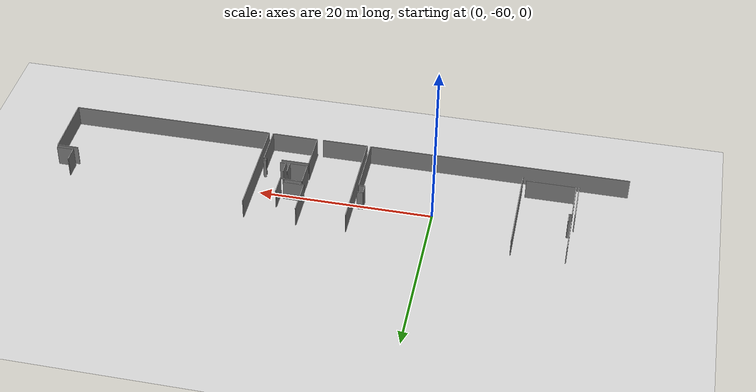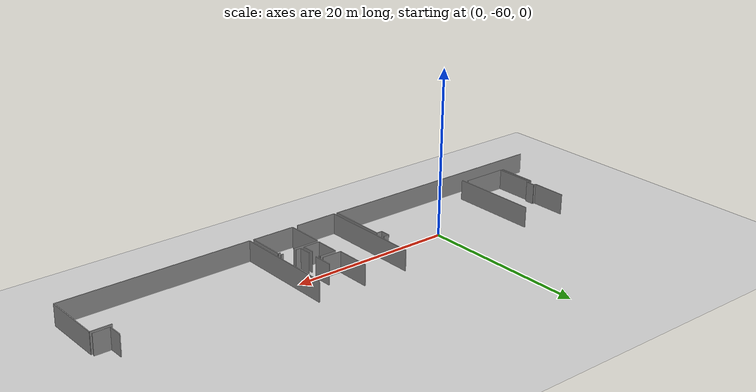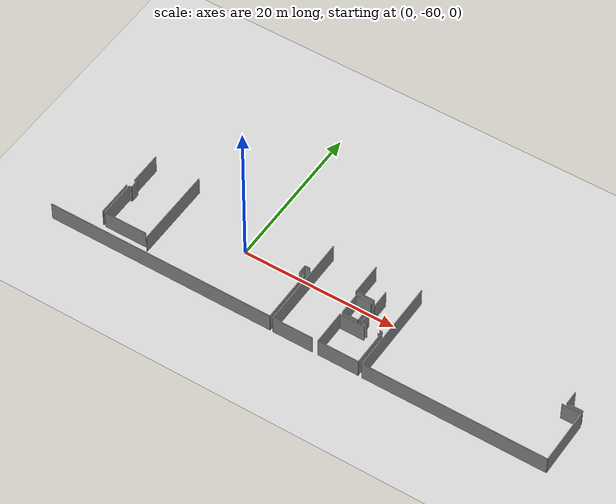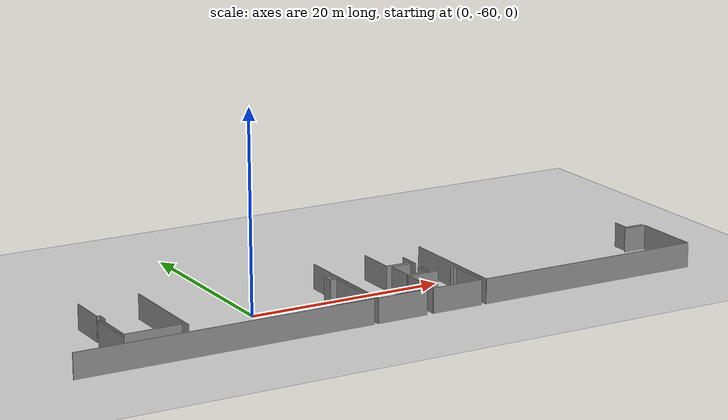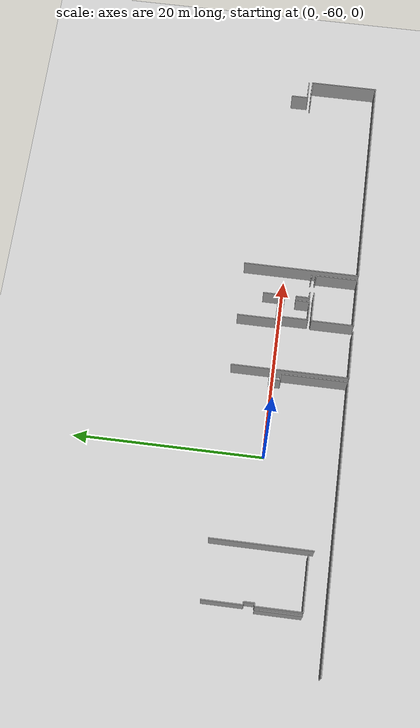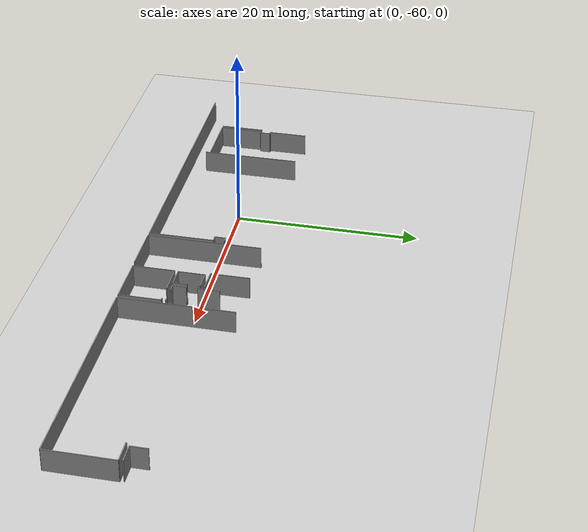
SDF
<sdf version="1.6">
 <world name="default">
  <model name="ground_plane">
   <static>1</static>
   <link name="link">
    <collision name="collision">
     <geometry><plane><normal>0 0 1</normal><size>100 100</size></plane></geometry>
     <surface><friction><ode><mu>100</mu><mu2>50</mu2></ode></friction></surface>
    </collision>
    <visual name="visual">
     <cast_shadows>0</cast_shadows>
     <geometry><plane><normal>0 0 1</normal><size>100 100</size></plane></geometry>
     <material>
      <script><uri>file://media/materials/scripts/gazebo.material</uri><name>Gazebo/Grey</name></script>
     </material>
    </visual>
   </link>
  </model>
  <model name="50036893">
   <static>1</static>
   <link name="Wall_76">
    <collision name="Wall_76_Collision">
     <geometry><box><size>4.75788913053 0.1 2.5</size></box></geometry>
     <pose>2.37894456527 0 1.25 0 0 0</pose>
    </collision>
    <visual name="Wall_76_Visual">
     <pose>2.37894456527 0 1.25 0 0 0</pose>
     <geometry><box><size>4.75788913053 0.1 2.5</size></box></geometry>
     <material>
      <script><uri>file://media/materials/scripts/gazebo.material</uri><name>Gazebo/Grey</name></script>
      <ambient>1 1 1 1</ambient>
     </material>
    </visual>
    <pose>58.3964949879 -128.67300291 0 0 0 -1.57079632679</pose>
   </link>
   <link name="Wall_78">
    <collision name="Wall_78_Collision">
     <geometry><box><size>4.75712827406 0.1 2.5</size></box></geometry>
     <pose>2.37856413703 0 1.25 0 0 0</pose>
    </collision>
    <visual name="Wall_78_Visual">
     <pose>2.37856413703 0 1.25 0 0 0</pose>
     <geometry><box><size>4.75712827406 0.1 2.5</size></box></geometry>
     <material>
      <script><uri>file://media/materials/scripts/gazebo.material</uri><name>Gazebo/Grey</name></script>
      <ambient>1 1 1 1</ambient>
     </material>
    </visual>
    <pose>58.7261994585 -133.440275937 0 0 0 1.57079632679</pose>
   </link>
   <link name="Wall_79">
    <collision name="Wall_79_Collision">
     <geometry><box><size>0.324632094194 0.1 2.5</size></box></geometry>
     <pose>0.162316047097 0 1.25 0 0 0</pose>
    </collision>
    <visual name="Wall_79_Visual">
     <pose>0.162316047097 0 1.25 0 0 0</pose>
     <geometry><box><size>0.324632094194 0.1 2.5</size></box></geometry>
     <material>
      <script><uri>file://media/materials/scripts/gazebo.material</uri><name>Gazebo/Grey</name></script>
      <ambient>1 1 1 1</ambient>
     </material>
    </visual>
    <pose>58.7261994585 -128.683147663 0 0 0 0.0</pose>
   </link>
   <link name="Wall_80">
    <collision name="Wall_80_Collision">
     <geometry><box><size>1.11845901203 0.1 2.5</size></box></geometry>
     <pose>0.559229506014 0 1.25 0 0 0</pose>
    </collision>
    <visual name="Wall_80_Visual">
     <pose>0.559229506014 0 1.25 0 0 0</pose>
     <geometry><box><size>1.11845901203 0.1 2.5</size></box></geometry>
     <material>
      <script><uri>file://media/materials/scripts/gazebo.material</uri><name>Gazebo/Grey</name></script>
      <ambient>1 1 1 1</ambient>
     </material>
    </visual>
    <pose>59.0508315527 -128.683147663 0 0 0 1.57079632679</pose>
   </link>
   <link name="Wall_81">
    <collision name="Wall_81_Collision">
     <geometry><box><size>0.317023529486 0.1 2.5</size></box></geometry>
     <pose>0.158511764743 0 1.25 0 0 0</pose>
    </collision>
    <visual name="Wall_81_Visual">
     <pose>0.158511764743 0 1.25 0 0 0</pose>
     <geometry><box><size>0.317023529486 0.1 2.5</size></box></geometry>
     <material>
      <script><uri>file://media/materials/scripts/gazebo.material</uri><name>Gazebo/Grey</name></script>
      <ambient>1 1 1 1</ambient>
     </material>
    </visual>
    <pose>59.0508315527 -127.564688651 0 0 0 3.14159265359</pose>
   </link>
   <link name="Wall_82">
    <collision name="Wall_82_Collision">
     <geometry><box><size>4.20221028805 0.1 2.5</size></box></geometry>
     <pose>2.10110514402 0 1.25 0 0 0</pose>
    </collision>
    <visual name="Wall_82_Visual">
     <pose>2.10110514402 0 1.25 0 0 0</pose>
     <geometry><box><size>4.20221028805 0.1 2.5</size></box></geometry>
     <material>
      <script><uri>file://media/materials/scripts/gazebo.material</uri><name>Gazebo/Grey</name></script>
      <ambient>1 1 1 1</ambient>
     </material>
    </visual>
    <pose>58.7338080232 -127.564688651 0 0 0 1.57079632679</pose>
   </link>
   <link name="Wall_86">
    <collision name="Wall_86_Collision">
     <geometry><box><size>5.65316453925 0.1 2.5</size></box></geometry>
     <pose>2.82658226963 0 1.25 0 0 0</pose>
    </collision>
    <visual name="Wall_86_Visual">
     <pose>2.82658226963 0 1.25 0 0 0</pose>
     <geometry><box><size>5.65316453925 0.1 2.5</size></box></geometry>
     <material>
      <script><uri>file://media/materials/scripts/gazebo.material</uri><name>Gazebo/Grey</name></script>
      <ambient>1 1 1 1</ambient>
     </material>
    </visual>
    <pose>64.3793630363 -133.436978893 0 0 0 -3.14100943248</pose>
   </link>
   <link name="Wall_89">
    <collision name="Wall_89_Collision">
     <geometry><box><size>10.5918829296 0.1 2.5</size></box></geometry>
     <pose>5.29594146478 0 1.25 0 0 0</pose>
    </collision>
    <visual name="Wall_89_Visual">
     <pose>5.29594146478 0 1.25 0 0 0</pose>
     <geometry><box><size>10.5918829296 0.1 2.5</size></box></geometry>
     <material>
      <script><uri>file://media/materials/scripts/gazebo.material</uri><name>Gazebo/Grey</name></script>
      <ambient>1 1 1 1</ambient>
     </material>
    </visual>
    <pose>64.8181236011 -133.951571486 0 0 0 1.57079632679</pose>
   </link>
   <link name="Wall_93">
    <collision name="Wall_93_Collision">
     <geometry><box><size>0.672089882511 0.1 2.5</size></box></geometry>
     <pose>0.336044941256 0 1.25 0 0 0</pose>
    </collision>
    <visual name="Wall_93_Visual">
     <pose>0.336044941256 0 1.25 0 0 0</pose>
     <geometry><box><size>0.672089882511 0.1 2.5</size></box></geometry>
     <material>
      <script><uri>file://media/materials/scripts/gazebo.material</uri><name>Gazebo/Grey</name></script>
      <ambient>1 1 1 1</ambient>
     </material>
    </visual>
    <pose>82.825060076 -127.553783042 0 0 0 3.14159265359</pose>
   </link>
   <link name="Wall_94">
    <collision name="Wall_94_Collision">
     <geometry><box><size>1.14027023086 0.1 2.5</size></box></geometry>
     <pose>0.570135115428 0 1.25 0 0 0</pose>
    </collision>
    <visual name="Wall_94_Visual">
     <pose>0.570135115428 0 1.25 0 0 0</pose>
     <geometry><box><size>1.14027023086 0.1 2.5</size></box></geometry>
     <material>
      <script><uri>file://media/materials/scripts/gazebo.material</uri><name>Gazebo/Grey</name></script>
      <ambient>1 1 1 1</ambient>
     </material>
    </visual>
    <pose>82.1529701934 -127.553783042 0 0 0 -1.57079632679</pose>
   </link>
   <link name="Wall_95">
    <collision name="Wall_95_Collision">
     <geometry><box><size>0.702524141342 0.1 2.5</size></box></geometry>
     <pose>0.351262070671 0 1.25 0 0 0</pose>
    </collision>
    <visual name="Wall_95_Visual">
     <pose>0.351262070671 0 1.25 0 0 0</pose>
     <geometry><box><size>0.702524141342 0.1 2.5</size></box></geometry>
     <material>
      <script><uri>file://media/materials/scripts/gazebo.material</uri><name>Gazebo/Grey</name></script>
      <ambient>1 1 1 1</ambient>
     </material>
    </visual>
    <pose>82.1529701934 -128.694053273 0 0 0 0.0</pose>
   </link>
   <link name="Wall_96">
    <collision name="Wall_96_Collision">
     <geometry><box><size>7.04806710754 0.1 2.5</size></box></geometry>
     <pose>3.52403355377 0 1.25 0 0 0</pose>
    </collision>
    <visual name="Wall_96_Visual">
     <pose>3.52403355377 0 1.25 0 0 0</pose>
     <geometry><box><size>7.04806710754 0.1 2.5</size></box></geometry>
     <material>
      <script><uri>file://media/materials/scripts/gazebo.material</uri><name>Gazebo/Grey</name></script>
      <ambient>1 1 1 1</ambient>
     </material>
    </visual>
    <pose>82.8554943348 -128.694053273 0 0 0 -1.57079632679</pose>
   </link>
   <link name="Wall_97">
    <collision name="Wall_97_Collision">
     <geometry><box><size>30.0157904505 0.1 2.5</size></box></geometry>
     <pose>15.0078952252 0 1.25 0 0 0</pose>
    </collision>
    <visual name="Wall_97_Visual">
     <pose>15.0078952252 0 1.25 0 0 0</pose>
     <geometry><box><size>30.0157904505 0.1 2.5</size></box></geometry>
     <material>
      <script><uri>file://media/materials/scripts/gazebo.material</uri><name>Gazebo/Grey</name></script>
      <ambient>1 1 1 1</ambient>
     </material>
    </visual>
    <pose>82.8554943348 -135.74212038 0 0 0 3.14117017791</pose>
   </link>
   <link name="Wall_98">
    <collision name="Wall_98_Collision">
     <geometry><box><size>12.3824318241 0.1 2.5</size></box></geometry>
     <pose>6.19121591204 0 1.25 0 0 0</pose>
    </collision>
    <visual name="Wall_98_Visual">
     <pose>6.19121591204 0 1.25 0 0 0</pose>
     <geometry><box><size>12.3824318241 0.1 2.5</size></box></geometry>
     <material>
      <script><uri>file://media/materials/scripts/gazebo.material</uri><name>Gazebo/Grey</name></script>
      <ambient>1 1 1 1</ambient>
     </material>
    </visual>
    <pose>83.2917187114 -135.767482263 0 0 0 1.57079632679</pose>
   </link>
   <link name="Wall_102">
    <collision name="Wall_102_Collision">
     <geometry><box><size>5.24737670231 0.1 2.5</size></box></geometry>
     <pose>2.62368835115 0 1.25 0 0 0</pose>
    </collision>
    <visual name="Wall_102_Visual">
     <pose>2.62368835115 0 1.25 0 0 0</pose>
     <geometry><box><size>5.24737670231 0.1 2.5</size></box></geometry>
     <material>
      <script><uri>file://media/materials/scripts/gazebo.material</uri><name>Gazebo/Grey</name></script>
      <ambient>1 1 1 1</ambient>
     </material>
    </visual>
    <pose>88.5390921714 -135.76164903 0 0 0 -3.14048100591</pose>
   </link>
   <link name="Wall_106">
    <collision name="Wall_106_Collision">
     <geometry><box><size>0.329704470666 0.1 2.5</size></box></geometry>
     <pose>0.164852235333 0 1.25 0 0 0</pose>
    </collision>
    <visual name="Wall_106_Visual">
     <pose>0.164852235333 0 1.25 0 0 0</pose>
     <geometry><box><size>0.329704470666 0.1 2.5</size></box></geometry>
     <material>
      <script><uri>file://media/materials/scripts/gazebo.material</uri><name>Gazebo/Grey</name></script>
      <ambient>1 1 1 1</ambient>
     </material>
    </visual>
    <pose>94.5118154669 -130.799343127 0 0 0 3.14159265359</pose>
   </link>
   <link name="Wall_107">
    <collision name="Wall_107_Collision">
     <geometry><box><size>0.674626070747 0.1 2.5</size></box></geometry>
     <pose>0.337313035374 0 1.25 0 0 0</pose>
    </collision>
    <visual name="Wall_107_Visual">
     <pose>0.337313035374 0 1.25 0 0 0</pose>
     <geometry><box><size>0.674626070747 0.1 2.5</size></box></geometry>
     <material>
      <script><uri>file://media/materials/scripts/gazebo.material</uri><name>Gazebo/Grey</name></script>
      <ambient>1 1 1 1</ambient>
     </material>
    </visual>
    <pose>92.5107629488 -130.799343127 0 0 0 3.14159265359</pose>
   </link>
   <link name="Wall_108">
    <collision name="Wall_108_Collision">
     <geometry><box><size>1.44917795799 0.1 2.5</size></box></geometry>
     <pose>0.724588978994 0 1.25 0 0 0</pose>
    </collision>
    <visual name="Wall_108_Visual">
     <pose>0.724588978994 0 1.25 0 0 0</pose>
     <geometry><box><size>1.44917795799 0.1 2.5</size></box></geometry>
     <material>
      <script><uri>file://media/materials/scripts/gazebo.material</uri><name>Gazebo/Grey</name></script>
      <ambient>1 1 1 1</ambient>
     </material>
    </visual>
    <pose>91.8361368781 -130.799343127 0 0 0 1.57079632679</pose>
   </link>
   <link name="Wall_109">
    <collision name="Wall_109_Collision">
     <geometry><box><size>2.34724221232 0.1 2.5</size></box></geometry>
     <pose>1.17362110616 0 1.25 0 0 0</pose>
    </collision>
    <visual name="Wall_109_Visual">
     <pose>1.17362110616 0 1.25 0 0 0</pose>
     <geometry><box><size>2.34724221232 0.1 2.5</size></box></geometry>
     <material>
      <script><uri>file://media/materials/scripts/gazebo.material</uri><name>Gazebo/Grey</name></script>
      <ambient>1 1 1 1</ambient>
     </material>
    </visual>
    <pose>91.8361368781 -128.177431729 0 0 0 1.57079632679</pose>
   </link>
   <link name="Wall_112">
    <collision name="Wall_112_Collision">
     <geometry><box><size>4.13601577509 0.1 2.5</size></box></geometry>
     <pose>2.06800788755 0 1.25 0 0 0</pose>
    </collision>
    <visual name="Wall_112_Visual">
     <pose>2.06800788755 0 1.25 0 0 0</pose>
     <geometry><box><size>4.13601577509 0.1 2.5</size></box></geometry>
     <material>
      <script><uri>file://media/materials/scripts/gazebo.material</uri><name>Gazebo/Grey</name></script>
      <ambient>1 1 1 1</ambient>
     </material>
    </visual>
    <pose>88.9778527362 -127.495704331 0 0 0 1.57079632679</pose>
   </link>
   <link name="Wall_116">
    <collision name="Wall_116_Collision">
     <geometry><box><size>2.42231262731 0.1 2.5</size></box></geometry>
     <pose>1.21115631365 0 1.25 0 0 0</pose>
    </collision>
    <visual name="Wall_116_Visual">
     <pose>1.21115631365 0 1.25 0 0 0</pose>
     <geometry><box><size>2.42231262731 0.1 2.5</size></box></geometry>
     <material>
      <script><uri>file://media/materials/scripts/gazebo.material</uri><name>Gazebo/Grey</name></script>
      <ambient>1 1 1 1</ambient>
     </material>
    </visual>
    <pose>91.3999125015 -127.530703729 0 0 0 3.12714339747</pose>
   </link>
   <link name="Wall_117">
    <collision name="Wall_117_Collision">
     <geometry><box><size>2.84991472067 0.1 2.5</size></box></geometry>
     <pose>1.42495736034 0 1.25 0 0 0</pose>
    </collision>
    <visual name="Wall_117_Visual">
     <pose>1.42495736034 0 1.25 0 0 0</pose>
     <geometry><box><size>2.84991472067 0.1 2.5</size></box></geometry>
     <material>
      <script><uri>file://media/materials/scripts/gazebo.material</uri><name>Gazebo/Grey</name></script>
      <ambient>1 1 1 1</ambient>
     </material>
    </visual>
    <pose>89.3024848304 -130.865030403 0 0 0 1.57079632679</pose>
   </link>
   <link name="Wall_118">
    <collision name="Wall_118_Collision">
     <geometry><box><size>2.07460197696 0.1 2.5</size></box></geometry>
     <pose>1.03730098848 0 1.25 0 0 0</pose>
    </collision>
    <visual name="Wall_118_Visual">
     <pose>1.03730098848 0 1.25 0 0 0</pose>
     <geometry><box><size>2.07460197696 0.1 2.5</size></box></geometry>
     <material>
      <script><uri>file://media/materials/scripts/gazebo.material</uri><name>Gazebo/Grey</name></script>
      <ambient>1 1 1 1</ambient>
     </material>
    </visual>
    <pose>89.3024848304 -128.015115682 0 0 0 0.0</pose>
   </link>
   <link name="Wall_119">
    <collision name="Wall_119_Collision">
     <geometry><box><size>0.181337458866 0.1 2.5</size></box></geometry>
     <pose>0.0906687294331 0 1.25 0 0 0</pose>
    </collision>
    <visual name="Wall_119_Visual">
     <pose>0.0906687294331 0 1.25 0 0 0</pose>
     <geometry><box><size>0.181337458866 0.1 2.5</size></box></geometry>
     <material>
      <script><uri>file://media/materials/scripts/gazebo.material</uri><name>Gazebo/Grey</name></script>
      <ambient>1 1 1 1</ambient>
     </material>
    </visual>
    <pose>91.3770868074 -128.015115682 0 0 0 -1.57079632679</pose>
   </link>
   <link name="Wall_120">
    <collision name="Wall_120_Collision">
     <geometry><box><size>1.52120570389 0.1 2.5</size></box></geometry>
     <pose>0.760602851944 0 1.25 0 0 0</pose>
    </collision>
    <visual name="Wall_120_Visual">
     <pose>0.760602851944 0 1.25 0 0 0</pose>
     <geometry><box><size>1.52120570389 0.1 2.5</size></box></geometry>
     <material>
      <script><uri>file://media/materials/scripts/gazebo.material</uri><name>Gazebo/Grey</name></script>
      <ambient>1 1 1 1</ambient>
     </material>
    </visual>
    <pose>91.3770868074 -129.359549066 0 0 0 -1.57079632679</pose>
   </link>
   <link name="Wall_121">
    <collision name="Wall_121_Collision">
     <geometry><box><size>2.07466156723 0.1 2.5</size></box></geometry>
     <pose>1.03733078361 0 1.25 0 0 0</pose>
    </collision>
    <visual name="Wall_121_Visual">
     <pose>1.03733078361 0 1.25 0 0 0</pose>
     <geometry><box><size>2.07466156723 0.1 2.5</size></box></geometry>
     <material>
      <script><uri>file://media/materials/scripts/gazebo.material</uri><name>Gazebo/Grey</name></script>
      <ambient>1 1 1 1</ambient>
     </material>
    </visual>
    <pose>91.3770868074 -130.88075477 0 0 0 3.13401333662</pose>
   </link>
   <link name="Wall_122">
    <collision name="Wall_122_Collision">
     <geometry><box><size>4.48245908811 0.1 2.5</size></box></geometry>
     <pose>2.24122954406 0 1.25 0 0 0</pose>
    </collision>
    <visual name="Wall_122_Visual">
     <pose>2.24122954406 0 1.25 0 0 0</pose>
     <geometry><box><size>4.48245908811 0.1 2.5</size></box></geometry>
     <material>
      <script><uri>file://media/materials/scripts/gazebo.material</uri><name>Gazebo/Grey</name></script>
      <ambient>1 1 1 1</ambient>
     </material>
    </visual>
    <pose>89.2340077481 -135.73780886 0 0 0 1.57079632679</pose>
   </link>
   <link name="Wall_123">
    <collision name="Wall_123_Collision">
     <geometry><box><size>3.22856762429 0.1 2.5</size></box></geometry>
     <pose>1.61428381214 0 1.25 0 0 0</pose>
    </collision>
    <visual name="Wall_123_Visual">
     <pose>1.61428381214 0 1.25 0 0 0</pose>
     <geometry><box><size>3.22856762429 0.1 2.5</size></box></geometry>
     <material>
      <script><uri>file://media/materials/scripts/gazebo.material</uri><name>Gazebo/Grey</name></script>
      <ambient>1 1 1 1</ambient>
     </material>
    </visual>
    <pose>89.2340077481 -131.255349772 0 0 0 0.0</pose>
   </link>
   <link name="Wall_124">
    <collision name="Wall_124_Collision">
     <geometry><box><size>0.317023529486 0.1 2.5</size></box></geometry>
     <pose>0.158511764743 0 1.25 0 0 0</pose>
    </collision>
    <visual name="Wall_124_Visual">
     <pose>0.158511764743 0 1.25 0 0 0</pose>
     <geometry><box><size>0.317023529486 0.1 2.5</size></box></geometry>
     <material>
      <script><uri>file://media/materials/scripts/gazebo.material</uri><name>Gazebo/Grey</name></script>
      <ambient>1 1 1 1</ambient>
     </material>
    </visual>
    <pose>94.2201538198 -131.255349772 0 0 0 0.0</pose>
   </link>
   <link name="Wall_125">
    <collision name="Wall_125_Collision">
     <geometry><box><size>4.50198773753 0.1 2.5</size></box></geometry>
     <pose>2.25099386876 0 1.25 0 0 0</pose>
    </collision>
    <visual name="Wall_125_Visual">
     <pose>2.25099386876 0 1.25 0 0 0</pose>
     <geometry><box><size>4.50198773753 0.1 2.5</size></box></geometry>
     <material>
      <script><uri>file://media/materials/scripts/gazebo.material</uri><name>Gazebo/Grey</name></script>
      <ambient>1 1 1 1</ambient>
     </material>
    </visual>
    <pose>94.5371773493 -131.255349772 0 0 0 -1.57079632679</pose>
   </link>
   <link name="Wall_126">
    <collision name="Wall_126_Collision">
     <geometry><box><size>5.30320555775 0.1 2.5</size></box></geometry>
     <pose>2.65160277887 0 1.25 0 0 0</pose>
    </collision>
    <visual name="Wall_126_Visual">
     <pose>2.65160277887 0 1.25 0 0 0</pose>
     <geometry><box><size>5.30320555775 0.1 2.5</size></box></geometry>
     <material>
      <script><uri>file://media/materials/scripts/gazebo.material</uri><name>Gazebo/Grey</name></script>
      <ambient>1 1 1 1</ambient>
     </material>
    </visual>
    <pose>94.5371773493 -135.75733751 0 0 0 3.13791022165</pose>
   </link>
   <link name="Wall_127">
    <collision name="Wall_127_Collision">
     <geometry><box><size>12.3641712688 0.1 2.5</size></box></geometry>
     <pose>6.1820856344 0 1.25 0 0 0</pose>
    </collision>
    <visual name="Wall_127_Visual">
     <pose>6.1820856344 0 1.25 0 0 0</pose>
     <geometry><box><size>12.3641712688 0.1 2.5</size></box></geometry>
     <material>
      <script><uri>file://media/materials/scripts/gazebo.material</uri><name>Gazebo/Grey</name></script>
      <ambient>1 1 1 1</ambient>
     </material>
    </visual>
    <pose>95.049487373 -135.780163204 0 0 0 1.57079632679</pose>
   </link>
   <link name="Wall_133">
    <collision name="Wall_133_Collision">
     <geometry><box><size>2.46263877705 0.1 2.5</size></box></geometry>
     <pose>1.23131938853 0 1.25 0 0 0</pose>
    </collision>
    <visual name="Wall_133_Visual">
     <pose>1.23131938853 0 1.25 0 0 0</pose>
     <geometry><box><size>2.46263877705 0.1 2.5</size></box></geometry>
     <material>
      <script><uri>file://media/materials/scripts/gazebo.material</uri><name>Gazebo/Grey</name></script>
      <ambient>1 1 1 1</ambient>
     </material>
    </visual>
    <pose>116.213978201 -128.551519494 0 0 0 0.0</pose>
   </link>
   <link name="Wall_134">
    <collision name="Wall_134_Collision">
     <geometry><box><size>7.24107103229 0.1 2.5</size></box></geometry>
     <pose>3.62053551615 0 1.25 0 0 0</pose>
    </collision>
    <visual name="Wall_134_Visual">
     <pose>3.62053551615 0 1.25 0 0 0</pose>
     <geometry><box><size>7.24107103229 0.1 2.5</size></box></geometry>
     <material>
      <script><uri>file://media/materials/scripts/gazebo.material</uri><name>Gazebo/Grey</name></script>
      <ambient>1 1 1 1</ambient>
     </material>
    </visual>
    <pose>118.676616979 -128.551519494 0 0 0 -1.57079632679</pose>
   </link>
   <link name="Wall_135">
    <collision name="Wall_135_Collision">
     <geometry><box><size>23.6271328738 0.1 2.5</size></box></geometry>
     <pose>11.8135664369 0 1.25 0 0 0</pose>
    </collision>
    <visual name="Wall_135_Visual">
     <pose>11.8135664369 0 1.25 0 0 0</pose>
     <geometry><box><size>23.6271328738 0.1 2.5</size></box></geometry>
     <material>
      <script><uri>file://media/materials/scripts/gazebo.material</uri><name>Gazebo/Grey</name></script>
      <ambient>1 1 1 1</ambient>
     </material>
    </visual>
    <pose>118.676616979 -135.792590526 0 0 0 3.14106667682</pose>
   </link>
   <link name="Wall_190">
    <collision name="Wall_190_Collision">
     <geometry><box><size>1.97822682399 0.1 2.5</size></box></geometry>
     <pose>0.989113411997 0 1.25 0 0 0</pose>
    </collision>
    <visual name="Wall_190_Visual">
     <pose>0.989113411997 0 1.25 0 0 0</pose>
     <geometry><box><size>1.97822682399 0.1 2.5</size></box></geometry>
     <material>
      <script><uri>file://media/materials/scripts/gazebo.material</uri><name>Gazebo/Grey</name></script>
      <ambient>1 1 1 1</ambient>
     </material>
    </visual>
    <pose>118.620820837 -128.15130899 0 0 0 3.14159265359</pose>
   </link>
   <link name="Wall_191">
    <collision name="Wall_191_Collision">
     <geometry><box><size>1.79054889454 0.1 2.5</size></box></geometry>
     <pose>0.895274447269 0 1.25 0 0 0</pose>
    </collision>
    <visual name="Wall_191_Visual">
     <pose>0.895274447269 0 1.25 0 0 0</pose>
     <geometry><box><size>1.79054889454 0.1 2.5</size></box></geometry>
     <material>
      <script><uri>file://media/materials/scripts/gazebo.material</uri><name>Gazebo/Grey</name></script>
      <ambient>1 1 1 1</ambient>
     </material>
    </visual>
    <pose>116.642594013 -128.15130899 0 0 0 1.57079632679</pose>
   </link>
   <pose>-74.25 67.8925905261 0 0 0 0</pose>
  </model>
 </world>
</sdf>
